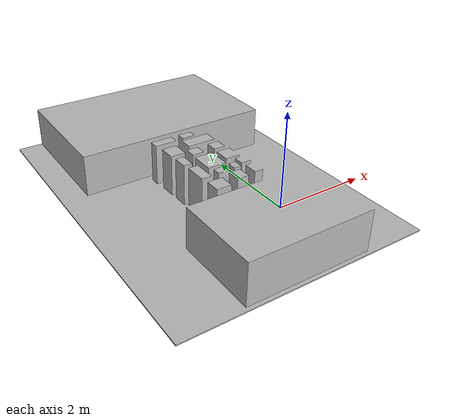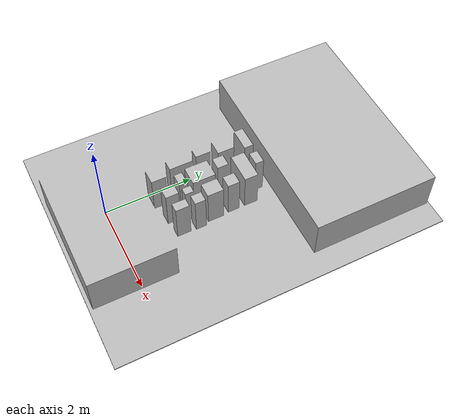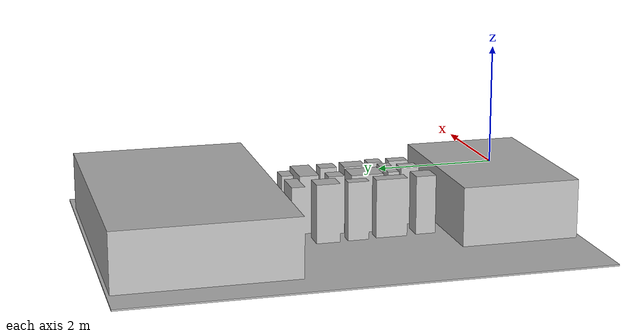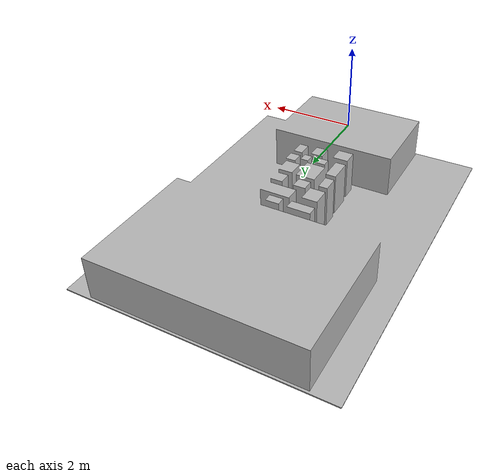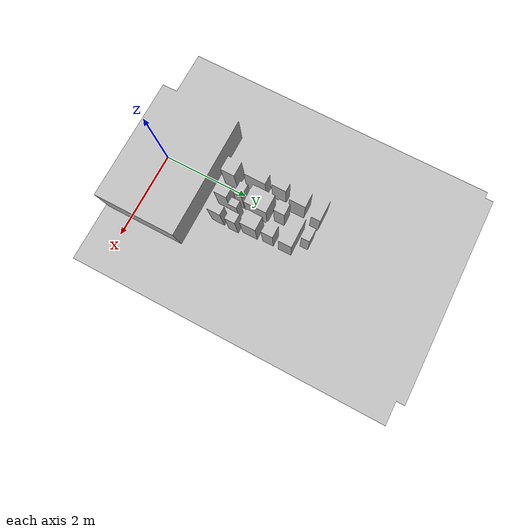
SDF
<?xml version="1.0" ?>
<sdf version='1.6'>
  <world name='default'>
    <include>
      <uri>model://sun</uri>
    </include>

    <model name="mesh_terrain">
      <pose>0 0 0.0  0 0 0</pose>
      <static>true</static>
      <link name="body">
        <visual name="visual">
          <geometry>
            <mesh><uri>model:///stepping_stones/stepping_stones.stl</uri></mesh>
          </geometry>
        </visual>
        <collision name="collision">
          <geometry>
            <mesh><uri>model:///stepping_stones/stepping_stones.stl</uri></mesh>
          </geometry>
          <surface>
            <friction>
              <ode>
                <mu>100</mu>
                <mu2>100</mu2>
              </ode>
            </friction>
          </surface>
        </collision>
      </link>
    </model>
  </world>
</sdf>
